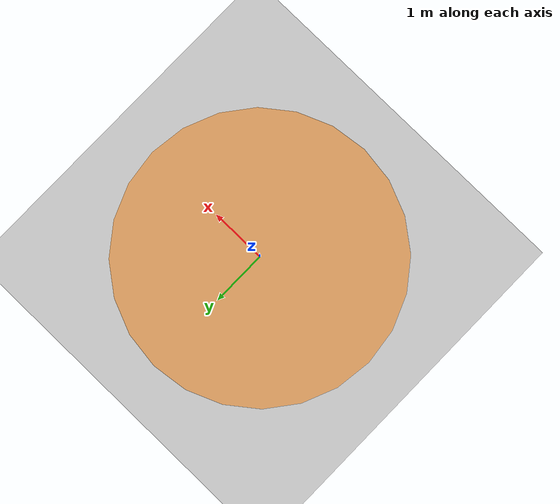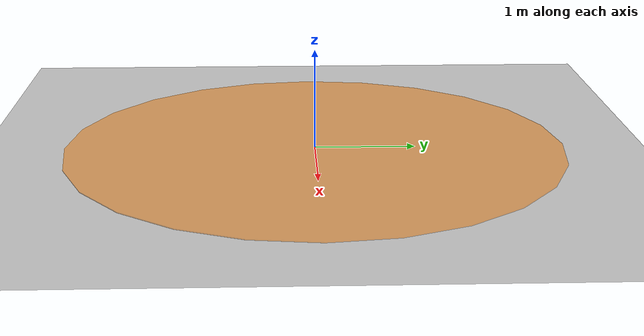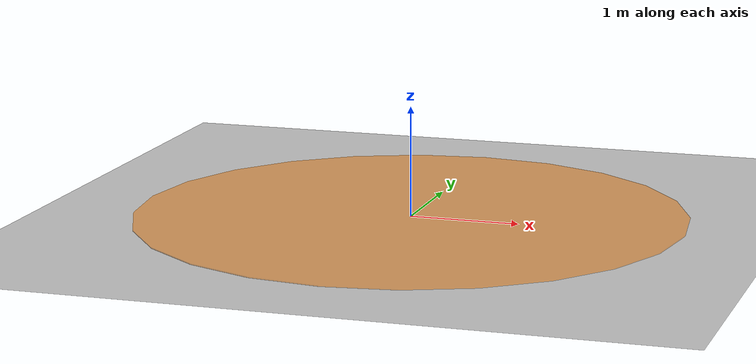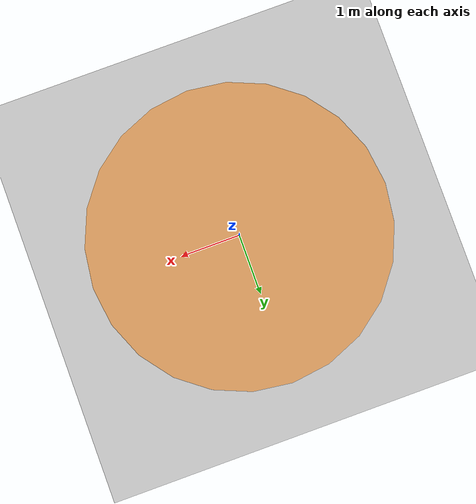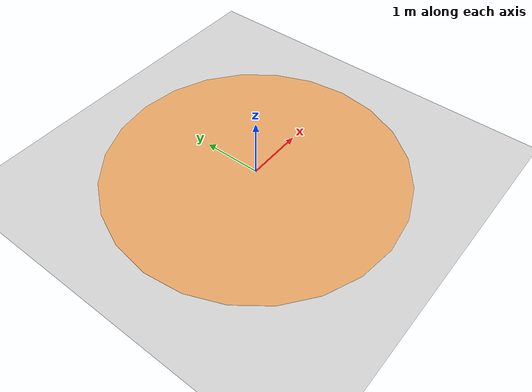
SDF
<?xml version="1.0" encoding="UTF-8"?>
<sdf version="1.9">
  <!-- From: https://github.com/PX4/PX4-gazebo-models/blob/main/worlds/default.sdf -->
  <world name="itr">
    <physics type="ode">
      <max_step_size>0.004</max_step_size>
      <real_time_factor>1.0</real_time_factor>
      <real_time_update_rate>250</real_time_update_rate>
    </physics>
    <gravity>0 0 -9.807232</gravity>
    <magnetic_field>6e-06 2.3e-05 -4.2e-05</magnetic_field>
    <atmosphere type="adiabatic"/>
    <scene>
      <grid>true</grid>
      <ambient>0.4 0.4 0.4 1</ambient>
      <background>0.7 0.7 0.7 1</background>
      <shadows>true</shadows>
    </scene>
    <model name="ground_plane">
      <static>true</static>
      <link name="link">
        <collision name="collision">
          <geometry>
            <plane>
              <normal>0 0 1</normal>
              <size>1 1</size>
            </plane>
          </geometry>
          <surface>
            <friction>
              <ode/>
            </friction>
            <bounce/>
            <contact/>
          </surface>
        </collision>
        <visual name="visual">
          <geometry>
            <plane>
              <normal>0 0 1</normal>
              <size>20 20</size>
            </plane>
          </geometry>
          <material>
            <ambient>0.8 0.8 0.8 1</ambient>
            <diffuse>0.8 0.8 0.8 1</diffuse>
            <specular>0.8 0.8 0.8 1</specular>
          </material>
        </visual>
        <pose>0 0 0 0 -0 0</pose>
        <inertial>
          <pose>0 0 0 0 -0 0</pose>
          <mass>1</mass>
          <inertia>
            <ixx>1</ixx>
            <ixy>0</ixy>
            <ixz>0</ixz>
            <iyy>1</iyy>
            <iyz>0</iyz>
            <izz>1</izz>
          </inertia>
        </inertial>
        <enable_wind>false</enable_wind>
      </link>
      <pose>0 0 0 0 -0 0</pose>
      <self_collide>false</self_collide>
    </model>
        <model name="boundary">
        <static>true</static>
        <link name="link">
            <visual name="boundary_vis">
                <geometry>
                    <cylinder>
                    <radius>2.5</radius>
                    <length>0.01</length>
                    </cylinder>
                </geometry>
                <material>
                    <ambient>1 0.5 0 0.5</ambient>
                    <diffuse>1 0.5 0 0.5</diffuse>
                </material>
                <cast_shadows>false</cast_shadows>
            </visual>
            <enable_wind>false</enable_wind>
        </link>
        <pose>0 0 0.005 0 -0 0</pose>
        <self_collide>false</self_collide>
    </model>
    <light name="sunUTC" type="directional">
      <pose>0 0 500 0 -0 0</pose>
      <cast_shadows>true</cast_shadows>
      <intensity>1</intensity>
      <direction>0.001 0.625 -0.78</direction>
      <diffuse>0.904 0.904 0.904 1</diffuse>
      <specular>0.271 0.271 0.271 1</specular>
      <attenuation>
        <range>2000</range>
        <linear>0</linear>
        <constant>1</constant>
        <quadratic>0</quadratic>
      </attenuation>
      <spot>
        <inner_angle>0</inner_angle>
        <outer_angle>0</outer_angle>
        <falloff>0</falloff>
      </spot>
    </light>
    <spherical_coordinates>
      <surface_model>EARTH_WGS84</surface_model>
      <world_frame_orientation>ENU</world_frame_orientation>
      <latitude_deg>47.397971057728974</latitude_deg>
      <longitude_deg> 8.546163739800146</longitude_deg>
      <elevation>0</elevation>
    </spherical_coordinates>
  </world>
</sdf>
